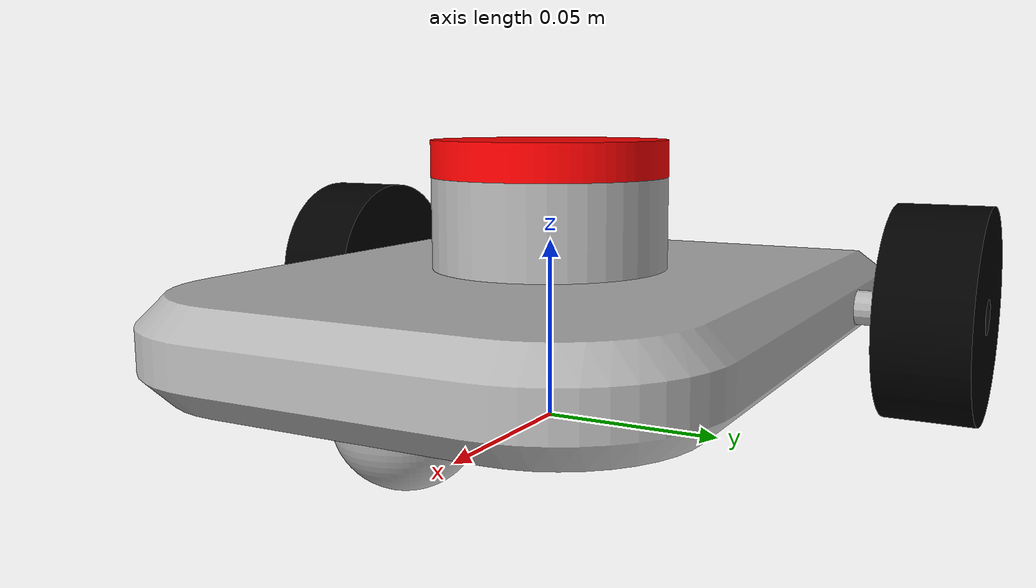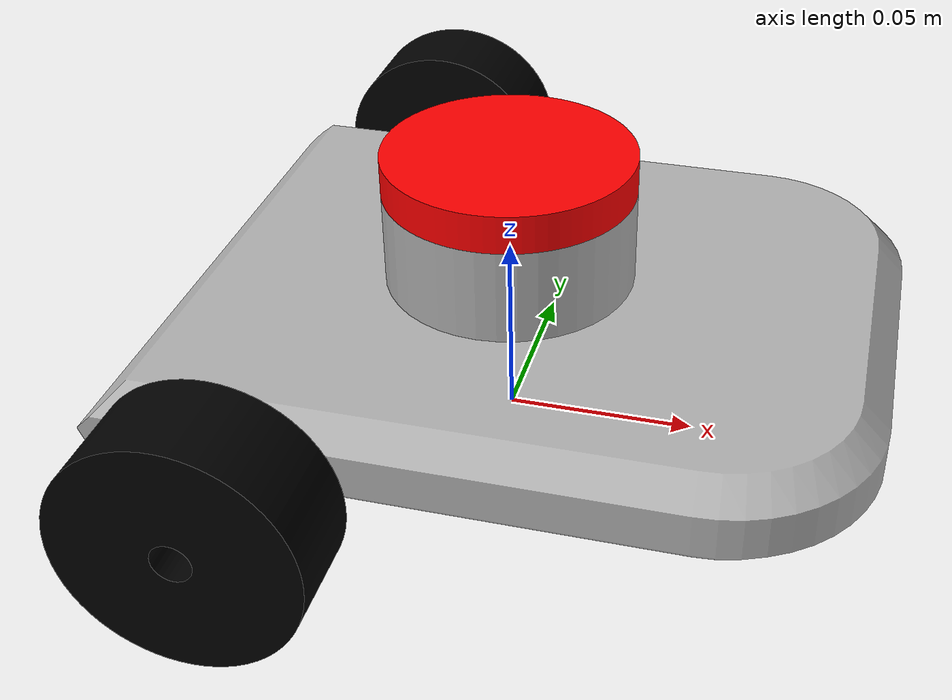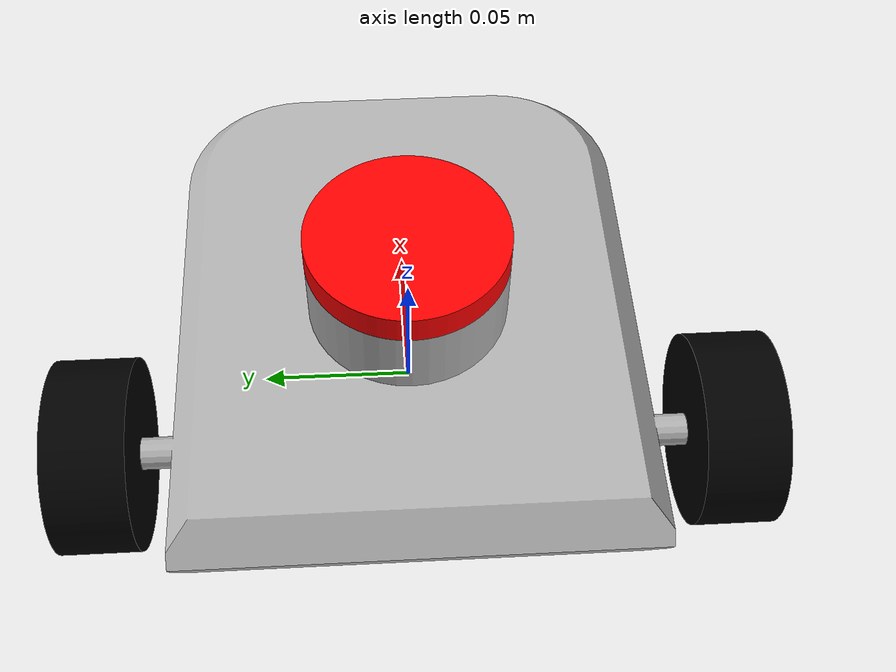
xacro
<?xml version="1.0" ?>
<robot name="2WDrive" xmlns:xacro="http://www.ros.org/wiki/xacro">

<xacro:include filename="$(find wheelie)/urdf/materials.xacro" />
<xacro:include filename="$(find wheelie)/urdf/2WDrive.trans" />
<xacro:include filename="$(find wheelie)/urdf/2WDrive.gazebo" />
<link name="base_link">
  <inertial>
    <origin xyz="0.0053018107056467135 -1.252045442277142e-17 0.032816165509054356" rpy="0 0 0"/>
    <mass value="0.7699915285230573"/>
    <inertia ixx="0.001296" iyy="0.00189" izz="0.003012" ixy="-0.0" iyz="0.0" ixz="9e-06"/>
  </inertial>
  <visual>
    <origin xyz="0 0 0" rpy="0 0 0"/>
    <geometry>
      <mesh filename="package://wheelie/meshes/base_link.stl" scale="0.001 0.001 0.001"/>
    </geometry>
    <material name="silver"/>
  </visual>
  <collision>
    <origin xyz="0 0 0" rpy="0 0 0"/>
    <geometry>
      <mesh filename="package://wheelie/meshes/base_link.stl" scale="0.001 0.001 0.001"/>
    </geometry>
  </collision>
</link>

<link name="right_wheel_1">
  <inertial>
    <origin xyz="1.4925560787304448e-14 -0.01249999999999997 -6.938893903907228e-18" rpy="0 0 0"/>
    <mass value="0.06391177554646728"/>
    <inertia ixx="1.8e-05" iyy="3e-05" izz="1.8e-05" ixy="0.0" iyz="-0.0" ixz="-0.0"/>
  </inertial>
  <visual>
    <origin xyz="0.045 0.085 -0.03" rpy="0 0 0"/>
    <geometry>
      <mesh filename="package://wheelie/meshes/right_wheel_1.stl" scale="0.001 0.001 0.001"/>
    </geometry>
    <material name="black"/>
  </visual>
  <collision>
    <origin xyz="0.045 0.085 -0.03" rpy="0 0 0"/>
    <geometry>
      <mesh filename="package://wheelie/meshes/right_wheel_1.stl" scale="0.001 0.001 0.001"/>
    </geometry>
  </collision>
</link>

<link name="left_wheel_1">
  <inertial>
    <origin xyz="1.4925560787304448e-14 0.012500000000000011 0.0" rpy="0 0 0"/>
    <mass value="0.06391177554646728"/>
    <inertia ixx="1.8e-05" iyy="3e-05" izz="1.8e-05" ixy="-0.0" iyz="0.0" ixz="-0.0"/>
  </inertial>
  <visual>
    <origin xyz="0.045 -0.085 -0.03" rpy="0 0 0"/>
    <geometry>
      <mesh filename="package://wheelie/meshes/left_wheel_1.stl" scale="0.001 0.001 0.001"/>
    </geometry>
    <material name="black"/>
  </visual>
  <collision>
    <origin xyz="0.045 -0.085 -0.03" rpy="0 0 0"/>
    <geometry>
      <mesh filename="package://wheelie/meshes/left_wheel_1.stl" scale="0.001 0.001 0.001"/>
    </geometry>
  </collision>
</link>

<link name="lidar_1">
  <inertial>
    <origin xyz="-1.3322676295501878e-17 -8.881784197001253e-18 0.0049999999999999906" rpy="0 0 0"/>
    <mass value="0.26048711836780625"/>
    <inertia ixx="7.1e-05" iyy="7.1e-05" izz="0.000138" ixy="-0.0" iyz="0.0" ixz="-0.0"/>
  </inertial>
  <visual>
    <origin xyz="-0.0 -0.0 -0.0675" rpy="0 0 0"/>
    <geometry>
      <mesh filename="package://wheelie/meshes/lidar_1.stl" scale="0.001 0.001 0.001"/>
    </geometry>
    <material name="red"/>
  </visual>
  <collision>
    <origin xyz="-0.0 -0.0 -0.0675" rpy="0 0 0"/>
    <geometry>
      <mesh filename="package://wheelie/meshes/lidar_1.stl" scale="0.001 0.001 0.001"/>
    </geometry>
  </collision>
</link>

<link name="caster_1">
  <inertial>
    <origin xyz="-0.024999999999999994 1.3931386937449837e-20 -0.0065625000000000076" rpy="0 0 0"/>
    <mass value="0.088113492702325"/>
    <inertia ixx="7e-06" iyy="7e-06" izz="1.1e-05" ixy="-0.0" iyz="-0.0" ixz="0.0"/>
  </inertial>
  <visual>
    <origin xyz="-0.093 -0.0 -0.0175" rpy="0 0 0"/>
    <geometry>
      <mesh filename="package://wheelie/meshes/caster_1.stl" scale="0.001 0.001 0.001"/>
    </geometry>
    <material name="silver"/>
  </visual>
  <collision>
    <origin xyz="-0.093 -0.0 -0.0175" rpy="0 0 0"/>
    <geometry>
      <mesh filename="package://wheelie/meshes/caster_1.stl" scale="0.001 0.001 0.001"/>
    </geometry>
  </collision>
</link>

<joint name="right_wheel_joint" type="continuous">
  <origin xyz="-0.045 -0.085 0.03" rpy="0 0 0"/>
  <parent link="base_link"/>
  <child link="right_wheel_1"/>
  <axis xyz="0.0 1.0 0.0"/>
</joint>

<joint name="left_wheel_joint" type="continuous">
  <origin xyz="-0.045 0.085 0.03" rpy="0 0 0"/>
  <parent link="base_link"/>
  <child link="left_wheel_1"/>
  <axis xyz="0.0 1.0 0.0"/>
</joint>

<joint name="lidar_joint" type="fixed">
  <origin xyz="0.0 0.0 0.0675" rpy="0 0 0"/>
  <parent link="base_link"/>
  <child link="lidar_1"/>
</joint>

<joint name="caster_joint" type="fixed">
  <origin xyz="0.093 0.0 0.0175" rpy="0 0 0"/>
  <parent link="base_link"/>
  <child link="caster_1"/>
</joint>

</robot>

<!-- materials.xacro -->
<robot name="2WDrive" xmlns:xacro="http://www.ros.org/wiki/xacro" >

<material name="silver">
  <color rgba="0.700 0.700 0.700 1.000"/>
</material>

<material name="black">
  <color rgba="0 0 0 1.000"/>
</material>

<material name="red">
  <color rgba="255.0 0 0 1.000"/>
</material>

</robot>

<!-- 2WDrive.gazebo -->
<robot name="2WDrive" xmlns:xacro="http://www.ros.org/wiki/xacro" >

<xacro:property name="body_color" value="Gazebo/White" />
<xacro:property name="wheel_color" value="Gazebo/FlatBlack" />
<xacro:property name="lidar_color" value="Gazebo/Red" />

<gazebo>
  <plugin name="control" filename="libgazebo_ros_control.so"/>
</gazebo>
<gazebo reference="base_link">
  <material>${body_color}</material>
  <mu1>0.2</mu1>
  <mu2>0.2</mu2>
  <selfCollide>true</selfCollide>
  <gravity>true</gravity>
</gazebo>

<gazebo reference="right_wheel_1">
  <material>${wheel_color}</material>
  <mu1>1.0</mu1>
  <mu2>1.0</mu2>
  <selfCollide>true</selfCollide>
</gazebo>

<gazebo reference="left_wheel_1">
  <material>${wheel_color}</material>
  <mu1>1.0</mu1>
  <mu2>1.0</mu2>
  <selfCollide>true</selfCollide>
</gazebo>

<gazebo reference="lidar_1">
  <material>${lidar_color}</material>
  <mu1>0.2</mu1>
  <mu2>0.2</mu2>
  <selfCollide>true</selfCollide>
</gazebo>

<gazebo reference="caster_1">
  <material>${body_color}</material>
  <mu1>0.2</mu1>
  <mu2>0.2</mu2>
  <selfCollide>true</selfCollide>
</gazebo>

<gazebo>
  <plugin name="differential_drive_controller" filename="libgazebo_ros_diff_drive.so">

    <!-- Plugin update rate in Hz -->
    <updateRate>10</updateRate>

    <!-- Name of left joint, defaults to `left_joint` -->
    <leftJoint>left_wheel_joint</leftJoint>

    <!-- Name of right joint, defaults to `right_joint` -->
    <rightJoint>right_wheel_joint</rightJoint>

    <!-- The distance from the center of one wheel to the other, in meters, defaults to 0.34 m -->
    <wheelSeparation>0.175</wheelSeparation>

    <!-- Diameter of the wheels, in meters, defaults to 0.15 m -->
    <wheelDiameter>0.06</wheelDiameter>

    <!-- Wheel acceleration, in rad/s^2, defaults to 0.0 rad/s^2 -->
    <wheelAcceleration>1.0</wheelAcceleration>

    <!-- Maximum torque which the wheels can produce, in Nm, defaults to 5 Nm -->
    <wheelTorque>20</wheelTorque>

    <!-- Topic to receive geometry_msgs/Twist message commands, defaults to `cmd_vel` -->
    <commandTopic>cmd_vel</commandTopic>

    <!-- Topic to publish nav_msgs/Odometry messages, defaults to `odom` -->
    <odometryTopic>odom</odometryTopic>

    <!-- Odometry frame, defaults to `odom` -->
    <odometryFrame>odom</odometryFrame>

    <!-- Robot frame to calculate odometry from, defaults to `base_footprint` -->
    <robotBaseFrame>base_link</robotBaseFrame>

    <!-- Odometry source, 0 for ENCODER, 1 for WORLD, defaults to WORLD -->
    <odometrySource>1</odometrySource>

    <!-- Set to true to publish transforms for the wheel links, defaults to false -->
    <publishWheelTF>true</publishWheelTF>

    <!-- Set to true to publish transforms for the odometry, defaults to true -->
    <publishOdom>true</publishOdom>

    <!-- Set to true to publish sensor_msgs/JointState on /joint_states for the wheel joints, defaults to false -->
    <publishWheelJointState>true</publishWheelJointState>

    <!-- Set to true to swap right and left wheels, defaults to true -->
    <legacyMode>false</legacyMode>
  </plugin>
</gazebo>

<gazebo reference="lidar_1">
    <sensor type="ray" name="lidar_sensor">
      <pose>0 0 0 0 0 0</pose>
      <visualize>false</visualize>
      <update_rate>40</update_rate>
      <ray>
        <scan>
          <horizontal>
            <samples>720</samples>
            <resolution>1</resolution>
            <min_angle>-3.14</min_angle>
            <max_angle>3.14</max_angle>
          </horizontal>
        </scan>
        <range>
          <min>0.10</min>
          <max>30.0</max>
          <resolution>0.01</resolution>
        </range>
        <noise>
          <type>gaussian</type>
          <mean>0.0</mean>
          <stddev>0.01</stddev>
        </noise>
      </ray>
      <plugin name="gazebo_ros_head_hokuyo_controller" filename="libgazebo_ros_laser.so">
        <topicName>/scan</topicName>
        <frameName>lidar_1</frameName>
      </plugin>
    </sensor>
  </gazebo>

</robot>
